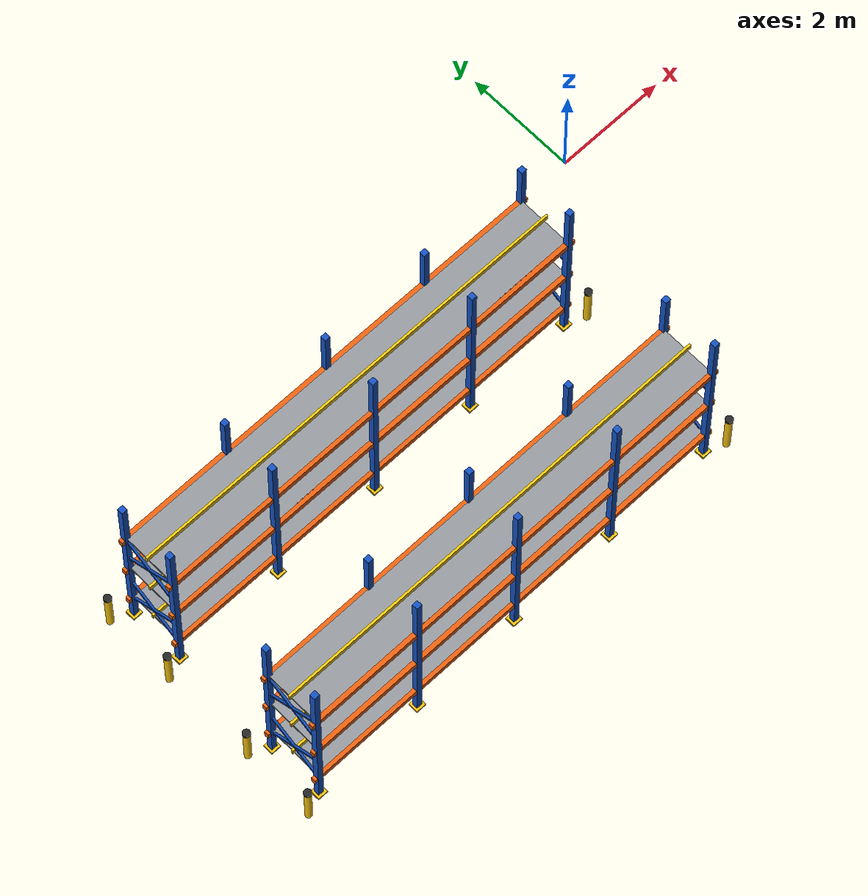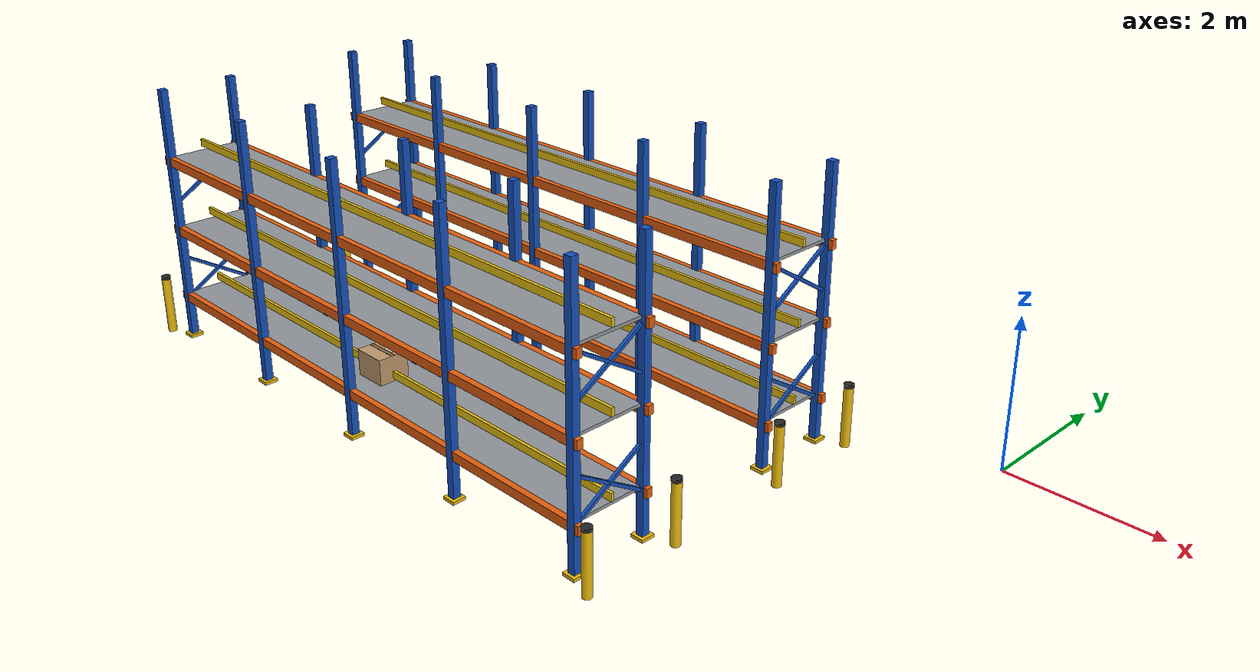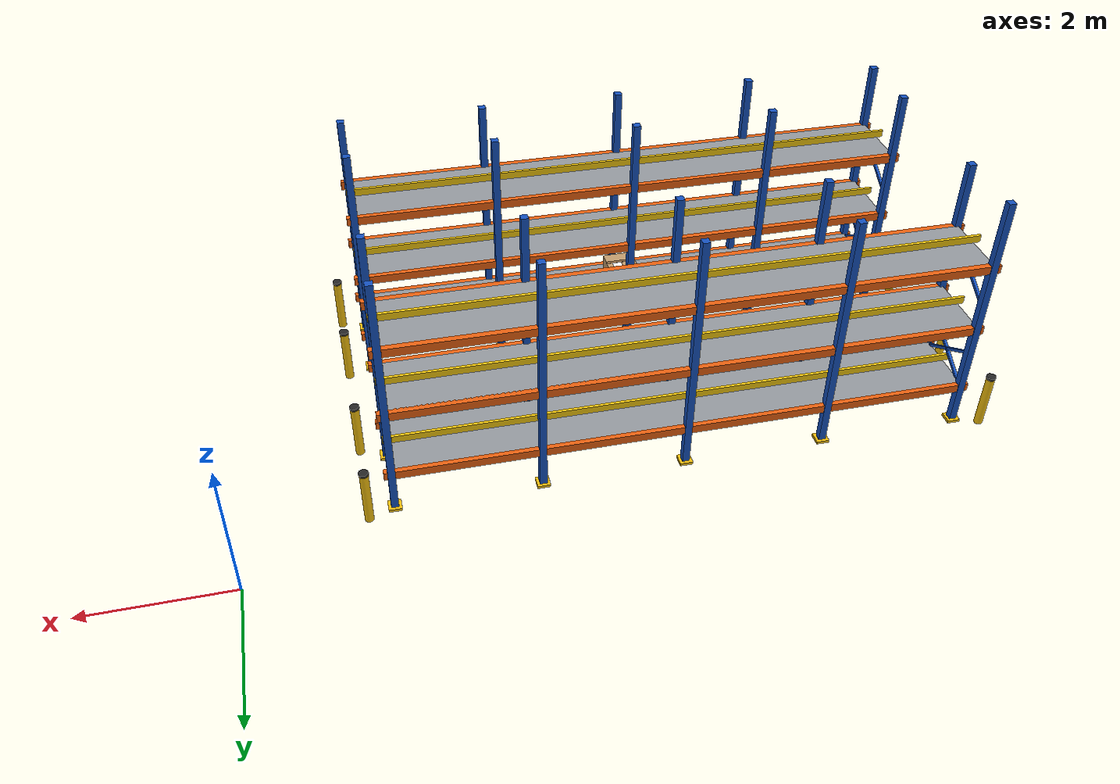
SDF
<sdf version="1.8">
 <world name="warehouse_3d">
  <model name="Rack_B">
   <static>true</static>
   <pose>-6.00 -4.50 0 0 0 0</pose>
   <link name="col_0_0">
    <pose>-4.0000 -0.5000 1.8000 0.0000 0.0000 0.0000</pose>
    <collision name="col_0_0_col"><geometry><box><size>0.1000 0.1000 3.6000</size></box></geometry></collision>
    <visual name="col_0_0_vis">
     <geometry><box><size>0.1000 0.1000 3.6000</size></box></geometry>
     <material>
      <ambient>0.052 0.208 0.488 1.00</ambient>
      <diffuse>0.080 0.320 0.750 1.00</diffuse>
      <specular>0.15 0.15 0.15 1.0</specular>
     </material>
    </visual>
   </link>
   <link name="foot_0_0">
    <pose>-4.0000 -0.5000 0.0200 0.0000 0.0000 0.0000</pose>
    <collision name="foot_0_0_col"><geometry><box><size>0.1800 0.1800 0.0400</size></box></geometry></collision>
    <visual name="foot_0_0_vis">
     <geometry><box><size>0.1800 0.1800 0.0400</size></box></geometry>
     <material>
      <ambient>0.617 0.488 0.033 1.00</ambient>
      <diffuse>0.950 0.750 0.050 1.00</diffuse>
      <specular>0.15 0.15 0.15 1.0</specular>
     </material>
    </visual>
   </link>
   <link name="col_0_1">
    <pose>-4.0000 0.5000 1.8000 0.0000 0.0000 0.0000</pose>
    <collision name="col_0_1_col"><geometry><box><size>0.1000 0.1000 3.6000</size></box></geometry></collision>
    <visual name="col_0_1_vis">
     <geometry><box><size>0.1000 0.1000 3.6000</size></box></geometry>
     <material>
      <ambient>0.052 0.208 0.488 1.00</ambient>
      <diffuse>0.080 0.320 0.750 1.00</diffuse>
      <specular>0.15 0.15 0.15 1.0</specular>
     </material>
    </visual>
   </link>
   <link name="foot_0_1">
    <pose>-4.0000 0.5000 0.0200 0.0000 0.0000 0.0000</pose>
    <collision name="foot_0_1_col"><geometry><box><size>0.1800 0.1800 0.0400</size></box></geometry></collision>
    <visual name="foot_0_1_vis">
     <geometry><box><size>0.1800 0.1800 0.0400</size></box></geometry>
     <material>
      <ambient>0.617 0.488 0.033 1.00</ambient>
      <diffuse>0.950 0.750 0.050 1.00</diffuse>
      <specular>0.15 0.15 0.15 1.0</specular>
     </material>
    </visual>
   </link>
   <link name="col_1_0">
    <pose>-2.0000 -0.5000 1.8000 0.0000 0.0000 0.0000</pose>
    <collision name="col_1_0_col"><geometry><box><size>0.1000 0.1000 3.6000</size></box></geometry></collision>
    <visual name="col_1_0_vis">
     <geometry><box><size>0.1000 0.1000 3.6000</size></box></geometry>
     <material>
      <ambient>0.052 0.208 0.488 1.00</ambient>
      <diffuse>0.080 0.320 0.750 1.00</diffuse>
      <specular>0.15 0.15 0.15 1.0</specular>
     </material>
    </visual>
   </link>
   <link name="foot_1_0">
    <pose>-2.0000 -0.5000 0.0200 0.0000 0.0000 0.0000</pose>
    <collision name="foot_1_0_col"><geometry><box><size>0.1800 0.1800 0.0400</size></box></geometry></collision>
    <visual name="foot_1_0_vis">
     <geometry><box><size>0.1800 0.1800 0.0400</size></box></geometry>
     <material>
      <ambient>0.617 0.488 0.033 1.00</ambient>
      <diffuse>0.950 0.750 0.050 1.00</diffuse>
      <specular>0.15 0.15 0.15 1.0</specular>
     </material>
    </visual>
   </link>
   <link name="col_1_1">
    <pose>-2.0000 0.5000 1.8000 0.0000 0.0000 0.0000</pose>
    <collision name="col_1_1_col"><geometry><box><size>0.1000 0.1000 3.6000</size></box></geometry></collision>
    <visual name="col_1_1_vis">
     <geometry><box><size>0.1000 0.1000 3.6000</size></box></geometry>
     <material>
      <ambient>0.052 0.208 0.488 1.00</ambient>
      <diffuse>0.080 0.320 0.750 1.00</diffuse>
      <specular>0.15 0.15 0.15 1.0</specular>
     </material>
    </visual>
   </link>
   <link name="foot_1_1">
    <pose>-2.0000 0.5000 0.0200 0.0000 0.0000 0.0000</pose>
    <collision name="foot_1_1_col"><geometry><box><size>0.1800 0.1800 0.0400</size></box></geometry></collision>
    <visual name="foot_1_1_vis">
     <geometry><box><size>0.1800 0.1800 0.0400</size></box></geometry>
     <material>
      <ambient>0.617 0.488 0.033 1.00</ambient>
      <diffuse>0.950 0.750 0.050 1.00</diffuse>
      <specular>0.15 0.15 0.15 1.0</specular>
     </material>
    </visual>
   </link>
   <link name="col_2_0">
    <pose>0.0000 -0.5000 1.8000 0.0000 0.0000 0.0000</pose>
    <collision name="col_2_0_col"><geometry><box><size>0.1000 0.1000 3.6000</size></box></geometry></collision>
    <visual name="col_2_0_vis">
     <geometry><box><size>0.1000 0.1000 3.6000</size></box></geometry>
     <material>
      <ambient>0.052 0.208 0.488 1.00</ambient>
      <diffuse>0.080 0.320 0.750 1.00</diffuse>
      <specular>0.15 0.15 0.15 1.0</specular>
     </material>
    </visual>
   </link>
   <link name="foot_2_0">
    <pose>0.0000 -0.5000 0.0200 0.0000 0.0000 0.0000</pose>
    <collision name="foot_2_0_col"><geometry><box><size>0.1800 0.1800 0.0400</size></box></geometry></collision>
    <visual name="foot_2_0_vis">
     <geometry><box><size>0.1800 0.1800 0.0400</size></box></geometry>
     <material>
      <ambient>0.617 0.488 0.033 1.00</ambient>
      <diffuse>0.950 0.750 0.050 1.00</diffuse>
      <specular>0.15 0.15 0.15 1.0</specular>
     </material>
    </visual>
   </link>
   <link name="col_2_1">
    <pose>0.0000 0.5000 1.8000 0.0000 0.0000 0.0000</pose>
    <collision name="col_2_1_col"><geometry><box><size>0.1000 0.1000 3.6000</size></box></geometry></collision>
    <visual name="col_2_1_vis">
     <geometry><box><size>0.1000 0.1000 3.6000</size></box></geometry>
     <material>
      <ambient>0.052 0.208 0.488 1.00</ambient>
      <diffuse>0.080 0.320 0.750 1.00</diffuse>
      <specular>0.15 0.15 0.15 1.0</specular>
     </material>
    </visual>
   </link>
   <link name="foot_2_1">
    <pose>0.0000 0.5000 0.0200 0.0000 0.0000 0.0000</pose>
    <collision name="foot_2_1_col"><geometry><box><size>0.1800 0.1800 0.0400</size></box></geometry></collision>
    <visual name="foot_2_1_vis">
     <geometry><box><size>0.1800 0.1800 0.0400</size></box></geometry>
     <material>
      <ambient>0.617 0.488 0.033 1.00</ambient>
      <diffuse>0.950 0.750 0.050 1.00</diffuse>
      <specular>0.15 0.15 0.15 1.0</specular>
     </material>
    </visual>
   </link>
   <link name="col_3_0">
    <pose>2.0000 -0.5000 1.8000 0.0000 0.0000 0.0000</pose>
    <collision name="col_3_0_col"><geometry><box><size>0.1000 0.1000 3.6000</size></box></geometry></collision>
    <visual name="col_3_0_vis">
     <geometry><box><size>0.1000 0.1000 3.6000</size></box></geometry>
     <material>
      <ambient>0.052 0.208 0.488 1.00</ambient>
      <diffuse>0.080 0.320 0.750 1.00</diffuse>
      <specular>0.15 0.15 0.15 1.0</specular>
     </material>
    </visual>
   </link>
   <link name="foot_3_0">
    <pose>2.0000 -0.5000 0.0200 0.0000 0.0000 0.0000</pose>
    <collision name="foot_3_0_col"><geometry><box><size>0.1800 0.1800 0.0400</size></box></geometry></collision>
    <visual name="foot_3_0_vis">
     <geometry><box><size>0.1800 0.1800 0.0400</size></box></geometry>
     <material>
      <ambient>0.617 0.488 0.033 1.00</ambient>
      <diffuse>0.950 0.750 0.050 1.00</diffuse>
      <specular>0.15 0.15 0.15 1.0</specular>
     </material>
    </visual>
   </link>
   <link name="col_3_1">
    <pose>2.0000 0.5000 1.8000 0.0000 0.0000 0.0000</pose>
    <collision name="col_3_1_col"><geometry><box><size>0.1000 0.1000 3.6000</size></box></geometry></collision>
    <visual name="col_3_1_vis">
     <geometry><box><size>0.1000 0.1000 3.6000</size></box></geometry>
     <material>
      <ambient>0.052 0.208 0.488 1.00</ambient>
      <diffuse>0.080 0.320 0.750 1.00</diffuse>
      <specular>0.15 0.15 0.15 1.0</specular>
     </material>
    </visual>
   </link>
   <link name="foot_3_1">
    <pose>2.0000 0.5000 0.0200 0.0000 0.0000 0.0000</pose>
    <collision name="foot_3_1_col"><geometry><box><size>0.1800 0.1800 0.0400</size></box></geometry></collision>
    <visual name="foot_3_1_vis">
     <geometry><box><size>0.1800 0.1800 0.0400</size></box></geometry>
     <material>
      <ambient>0.617 0.488 0.033 1.00</ambient>
      <diffuse>0.950 0.750 0.050 1.00</diffuse>
      <specular>0.15 0.15 0.15 1.0</specular>
     </material>
    </visual>
   </link>
   <link name="col_4_0">
    <pose>4.0000 -0.5000 1.8000 0.0000 0.0000 0.0000</pose>
    <collision name="col_4_0_col"><geometry><box><size>0.1000 0.1000 3.6000</size></box></geometry></collision>
    <visual name="col_4_0_vis">
     <geometry><box><size>0.1000 0.1000 3.6000</size></box></geometry>
     <material>
      <ambient>0.052 0.208 0.488 1.00</ambient>
      <diffuse>0.080 0.320 0.750 1.00</diffuse>
      <specular>0.15 0.15 0.15 1.0</specular>
     </material>
    </visual>
   </link>
   <link name="foot_4_0">
    <pose>4.0000 -0.5000 0.0200 0.0000 0.0000 0.0000</pose>
    <collision name="foot_4_0_col"><geometry><box><size>0.1800 0.1800 0.0400</size></box></geometry></collision>
    <visual name="foot_4_0_vis">
     <geometry><box><size>0.1800 0.1800 0.0400</size></box></geometry>
     <material>
      <ambient>0.617 0.488 0.033 1.00</ambient>
      <diffuse>0.950 0.750 0.050 1.00</diffuse>
      <specular>0.15 0.15 0.15 1.0</specular>
     </material>
    </visual>
   </link>
   <link name="col_4_1">
    <pose>4.0000 0.5000 1.8000 0.0000 0.0000 0.0000</pose>
    <collision name="col_4_1_col"><geometry><box><size>0.1000 0.1000 3.6000</size></box></geometry></collision>
    <visual name="col_4_1_vis">
     <geometry><box><size>0.1000 0.1000 3.6000</size></box></geometry>
     <material>
      <ambient>0.052 0.208 0.488 1.00</ambient>
      <diffuse>0.080 0.320 0.750 1.00</diffuse>
      <specular>0.15 0.15 0.15 1.0</specular>
     </material>
    </visual>
   </link>
   <link name="foot_4_1">
    <pose>4.0000 0.5000 0.0200 0.0000 0.0000 0.0000</pose>
    <collision name="foot_4_1_col"><geometry><box><size>0.1800 0.1800 0.0400</size></box></geometry></collision>
    <visual name="foot_4_1_vis">
     <geometry><box><size>0.1800 0.1800 0.0400</size></box></geometry>
     <material>
      <ambient>0.617 0.488 0.033 1.00</ambient>
      <diffuse>0.950 0.750 0.050 1.00</diffuse>
      <specular>0.15 0.15 0.15 1.0</specular>
     </material>
    </visual>
   </link>
   <link name="x_brace_low_1_w">
    <pose>-4.0000 0.0000 0.9000 0.5500 0.0000 0.0000</pose>
    <visual name="x_brace_low_1_w_vis">
     <geometry><box><size>0.0400 1.0500 0.0400</size></box></geometry>
     <material>
      <ambient>0.052 0.208 0.488 1.00</ambient>
      <diffuse>0.080 0.320 0.750 1.00</diffuse>
      <specular>0.15 0.15 0.15 1.0</specular>
     </material>
    </visual>
   </link>
   <link name="x_brace_low_2_w">
    <pose>-4.0000 0.0000 0.9000 -0.5500 0.0000 0.0000</pose>
    <visual name="x_brace_low_2_w_vis">
     <geometry><box><size>0.0400 1.0500 0.0400</size></box></geometry>
     <material>
      <ambient>0.052 0.208 0.488 1.00</ambient>
      <diffuse>0.080 0.320 0.750 1.00</diffuse>
      <specular>0.15 0.15 0.15 1.0</specular>
     </material>
    </visual>
   </link>
   <link name="x_brace_hi_1_w">
    <pose>-4.0000 0.0000 2.3000 0.5500 0.0000 0.0000</pose>
    <visual name="x_brace_hi_1_w_vis">
     <geometry><box><size>0.0400 1.0500 0.0400</size></box></geometry>
     <material>
      <ambient>0.052 0.208 0.488 1.00</ambient>
      <diffuse>0.080 0.320 0.750 1.00</diffuse>
      <specular>0.15 0.15 0.15 1.0</specular>
     </material>
    </visual>
   </link>
   <link name="x_brace_hi_2_w">
    <pose>-4.0000 0.0000 2.3000 -0.5500 0.0000 0.0000</pose>
    <visual name="x_brace_hi_2_w_vis">
     <geometry><box><size>0.0400 1.0500 0.0400</size></box></geometry>
     <material>
      <ambient>0.052 0.208 0.488 1.00</ambient>
      <diffuse>0.080 0.320 0.750 1.00</diffuse>
      <specular>0.15 0.15 0.15 1.0</specular>
     </material>
    </visual>
   </link>
   <link name="x_brace_low_1_e">
    <pose>4.0000 0.0000 0.9000 0.5500 0.0000 0.0000</pose>
    <visual name="x_brace_low_1_e_vis">
     <geometry><box><size>0.0400 1.0500 0.0400</size></box></geometry>
     <material>
      <ambient>0.052 0.208 0.488 1.00</ambient>
      <diffuse>0.080 0.320 0.750 1.00</diffuse>
      <specular>0.15 0.15 0.15 1.0</specular>
     </material>
    </visual>
   </link>
   <link name="x_brace_low_2_e">
    <pose>4.0000 0.0000 0.9000 -0.5500 0.0000 0.0000</pose>
    <visual name="x_brace_low_2_e_vis">
     <geometry><box><size>0.0400 1.0500 0.0400</size></box></geometry>
     <material>
      <ambient>0.052 0.208 0.488 1.00</ambient>
      <diffuse>0.080 0.320 0.750 1.00</diffuse>
      <specular>0.15 0.15 0.15 1.0</specular>
     </material>
    </visual>
   </link>
   <link name="x_brace_hi_1_e">
    <pose>4.0000 0.0000 2.3000 0.5500 0.0000 0.0000</pose>
    <visual name="x_brace_hi_1_e_vis">
     <geometry><box><size>0.0400 1.0500 0.0400</size></box></geometry>
     <material>
      <ambient>0.052 0.208 0.488 1.00</ambient>
      <diffuse>0.080 0.320 0.750 1.00</diffuse>
      <specular>0.15 0.15 0.15 1.0</specular>
     </material>
    </visual>
   </link>
   <link name="x_brace_hi_2_e">
    <pose>4.0000 0.0000 2.3000 -0.5500 0.0000 0.0000</pose>
    <visual name="x_brace_hi_2_e_vis">
     <geometry><box><size>0.0400 1.0500 0.0400</size></box></geometry>
     <material>
      <ambient>0.052 0.208 0.488 1.00</ambient>
      <diffuse>0.080 0.320 0.750 1.00</diffuse>
      <specular>0.15 0.15 0.15 1.0</specular>
     </material>
    </visual>
   </link>
   <link name="beam_front_0">
    <pose>0.0000 0.5000 0.6000 0.0000 0.0000 0.0000</pose>
    <collision name="beam_front_0_col">
     <geometry><box><size>8.2000 0.0800 0.1200</size></box></geometry>
    </collision>
    <visual name="beam_front_0_vis">
     <geometry><box><size>8.2000 0.0800 0.1200</size></box></geometry>
     <material>
      <ambient>0.598 0.247 0.039 1.00</ambient>
      <diffuse>0.920 0.380 0.060 1.00</diffuse>
      <specular>0.15 0.15 0.15 1.0</specular>
     </material>
    </visual>
   </link>
   <link name="beam_rear_0">
    <pose>0.0000 -0.5000 0.6000 0.0000 0.0000 0.0000</pose>
    <collision name="beam_rear_0_col">
     <geometry><box><size>8.2000 0.0800 0.1200</size></box></geometry>
    </collision>
    <visual name="beam_rear_0_vis">
     <geometry><box><size>8.2000 0.0800 0.1200</size></box></geometry>
     <material>
      <ambient>0.598 0.247 0.039 1.00</ambient>
      <diffuse>0.920 0.380 0.060 1.00</diffuse>
      <specular>0.15 0.15 0.15 1.0</specular>
     </material>
    </visual>
   </link>
   <link name="deck_0">
    <pose>0.0000 0.0000 0.6400 0.0000 0.0000 0.0000</pose>
    <collision name="deck_0_col"><geometry><box><size>8.0000 0.9400 0.0400</size></box></geometry></collision>
    <visual name="deck_0_vis">
     <geometry><box><size>8.0000 0.9400 0.0400</size></box></geometry>
     <material>
      <ambient>0.377 0.390 0.403 1.00</ambient>
      <diffuse>0.580 0.600 0.620 1.00</diffuse>
      <specular>0.15 0.15 0.15 1.0</specular>
     </material>
    </visual>
   </link>
   <link name="backstop_0">
    <pose>0.0000 0.0000 0.7500 0.0000 0.0000 0.0000</pose>
    <visual name="backstop_0_vis">
     <geometry><box><size>8.1000 0.0400 0.1000</size></box></geometry>
     <material>
      <ambient>0.617 0.507 0.033 1.00</ambient>
      <diffuse>0.950 0.780 0.050 1.00</diffuse>
      <specular>0.15 0.15 0.15 1.0</specular>
     </material>
    </visual>
   </link>
   <link name="beam_front_1">
    <pose>0.0000 0.5000 1.6000 0.0000 0.0000 0.0000</pose>
    <collision name="beam_front_1_col">
     <geometry><box><size>8.2000 0.0800 0.1200</size></box></geometry>
    </collision>
    <visual name="beam_front_1_vis">
     <geometry><box><size>8.2000 0.0800 0.1200</size></box></geometry>
     <material>
      <ambient>0.598 0.247 0.039 1.00</ambient>
      <diffuse>0.920 0.380 0.060 1.00</diffuse>
      <specular>0.15 0.15 0.15 1.0</specular>
     </material>
    </visual>
   </link>
   <link name="beam_rear_1">
    <pose>0.0000 -0.5000 1.6000 0.0000 0.0000 0.0000</pose>
    <collision name="beam_rear_1_col">
     <geometry><box><size>8.2000 0.0800 0.1200</size></box></geometry>
    </collision>
    <visual name="beam_rear_1_vis">
     <geometry><box><size>8.2000 0.0800 0.1200</size></box></geometry>
     <material>
      <ambient>0.598 0.247 0.039 1.00</ambient>
      <diffuse>0.920 0.380 0.060 1.00</diffuse>
      <specular>0.15 0.15 0.15 1.0</specular>
     </material>
    </visual>
   </link>
   <link name="deck_1">
    <pose>0.0000 0.0000 1.6400 0.0000 0.0000 0.0000</pose>
    <collision name="deck_1_col"><geometry><box><size>8.0000 0.9400 0.0400</size></box></geometry></collision>
    <visual name="deck_1_vis">
     <geometry><box><size>8.0000 0.9400 0.0400</size></box></geometry>
     <material>
      <ambient>0.377 0.390 0.403 1.00</ambient>
      <diffuse>0.580 0.600 0.620 1.00</diffuse>
      <specular>0.15 0.15 0.15 1.0</specular>
     </material>
    </visual>
   </link>
   <link name="backstop_1">
    <pose>0.0000 0.0000 1.7500 0.0000 0.0000 0.0000</pose>
    <visual name="backstop_1_vis">
     <geometry><box><size>8.1000 0.0400 0.1000</size></box></geometry>
     <material>
      <ambient>0.617 0.507 0.033 1.00</ambient>
      <diffuse>0.950 0.780 0.050 1.00</diffuse>
      <specular>0.15 0.15 0.15 1.0</specular>
     </material>
    </visual>
   </link>
   <link name="beam_front_2">
    <pose>0.0000 0.5000 2.6000 0.0000 0.0000 0.0000</pose>
    <collision name="beam_front_2_col">
     <geometry><box><size>8.2000 0.0800 0.1200</size></box></geometry>
    </collision>
    <visual name="beam_front_2_vis">
     <geometry><box><size>8.2000 0.0800 0.1200</size></box></geometry>
     <material>
      <ambient>0.598 0.247 0.039 1.00</ambient>
      <diffuse>0.920 0.380 0.060 1.00</diffuse>
      <specular>0.15 0.15 0.15 1.0</specular>
     </material>
    </visual>
   </link>
   <link name="beam_rear_2">
    <pose>0.0000 -0.5000 2.6000 0.0000 0.0000 0.0000</pose>
    <collision name="beam_rear_2_col">
     <geometry><box><size>8.2000 0.0800 0.1200</size></box></geometry>
    </collision>
    <visual name="beam_rear_2_vis">
     <geometry><box><size>8.2000 0.0800 0.1200</size></box></geometry>
     <material>
      <ambient>0.598 0.247 0.039 1.00</ambient>
      <diffuse>0.920 0.380 0.060 1.00</diffuse>
      <specular>0.15 0.15 0.15 1.0</specular>
     </material>
    </visual>
   </link>
   <link name="deck_2">
    <pose>0.0000 0.0000 2.6400 0.0000 0.0000 0.0000</pose>
    <collision name="deck_2_col"><geometry><box><size>8.0000 0.9400 0.0400</size></box></geometry></collision>
    <visual name="deck_2_vis">
     <geometry><box><size>8.0000 0.9400 0.0400</size></box></geometry>
     <material>
      <ambient>0.377 0.390 0.403 1.00</ambient>
      <diffuse>0.580 0.600 0.620 1.00</diffuse>
      <specular>0.15 0.15 0.15 1.0</specular>
     </material>
    </visual>
   </link>
   <link name="backstop_2">
    <pose>0.0000 0.0000 2.7500 0.0000 0.0000 0.0000</pose>
    <visual name="backstop_2_vis">
     <geometry><box><size>8.1000 0.0400 0.1000</size></box></geometry>
     <material>
      <ambient>0.617 0.507 0.033 1.00</ambient>
      <diffuse>0.950 0.780 0.050 1.00</diffuse>
      <specular>0.15 0.15 0.15 1.0</specular>
     </material>
    </visual>
   </link>
   <link name="bollard_0">
    <pose>-4.3500 -0.6500 0.4000 0.0000 0.0000 0.0000</pose>
    <collision name="bollard_0_col">
     <geometry><cylinder><radius>0.0600</radius><length>0.8000</length></cylinder></geometry>
    </collision>
    <visual name="bollard_0_vis">
     <geometry><cylinder><radius>0.0600</radius><length>0.8000</length></cylinder></geometry>
     <material>
      <ambient>0.617 0.488 0.033 1.00</ambient>
      <diffuse>0.950 0.750 0.050 1.00</diffuse>
      <specular>0.2 0.2 0.2 1.0</specular>
     </material>
    </visual>
   </link>
   <link name="bollard_cap_0">
    <pose>-4.3500 -0.6500 0.8200 0.0000 0.0000 0.0000</pose>
    <collision name="bollard_cap_0_col">
     <geometry><cylinder><radius>0.0650</radius><length>0.0400</length></cylinder></geometry>
    </collision>
    <visual name="bollard_cap_0_vis">
     <geometry><cylinder><radius>0.0650</radius><length>0.0400</length></cylinder></geometry>
     <material>
      <ambient>0.098 0.098 0.098 1.00</ambient>
      <diffuse>0.150 0.150 0.150 1.00</diffuse>
      <specular>0.2 0.2 0.2 1.0</specular>
     </material>
    </visual>
   </link>
   <link name="bollard_1">
    <pose>-4.3500 0.6500 0.4000 0.0000 0.0000 0.0000</pose>
    <collision name="bollard_1_col">
     <geometry><cylinder><radius>0.0600</radius><length>0.8000</length></cylinder></geometry>
    </collision>
    <visual name="bollard_1_vis">
     <geometry><cylinder><radius>0.0600</radius><length>0.8000</length></cylinder></geometry>
     <material>
      <ambient>0.617 0.488 0.033 1.00</ambient>
      <diffuse>0.950 0.750 0.050 1.00</diffuse>
      <specular>0.2 0.2 0.2 1.0</specular>
     </material>
    </visual>
   </link>
   <link name="bollard_cap_1">
    <pose>-4.3500 0.6500 0.8200 0.0000 0.0000 0.0000</pose>
    <collision name="bollard_cap_1_col">
     <geometry><cylinder><radius>0.0650</radius><length>0.0400</length></cylinder></geometry>
    </collision>
    <visual name="bollard_cap_1_vis">
     <geometry><cylinder><radius>0.0650</radius><length>0.0400</length></cylinder></geometry>
     <material>
      <ambient>0.098 0.098 0.098 1.00</ambient>
      <diffuse>0.150 0.150 0.150 1.00</diffuse>
      <specular>0.2 0.2 0.2 1.0</specular>
     </material>
    </visual>
   </link>
   <link name="bollard_2">
    <pose>4.3500 -0.6500 0.4000 0.0000 0.0000 0.0000</pose>
    <collision name="bollard_2_col">
     <geometry><cylinder><radius>0.0600</radius><length>0.8000</length></cylinder></geometry>
    </collision>
    <visual name="bollard_2_vis">
     <geometry><cylinder><radius>0.0600</radius><length>0.8000</length></cylinder></geometry>
     <material>
      <ambient>0.617 0.488 0.033 1.00</ambient>
      <diffuse>0.950 0.750 0.050 1.00</diffuse>
      <specular>0.2 0.2 0.2 1.0</specular>
     </material>
    </visual>
   </link>
   <link name="bollard_cap_2">
    <pose>4.3500 -0.6500 0.8200 0.0000 0.0000 0.0000</pose>
    <collision name="bollard_cap_2_col">
     <geometry><cylinder><radius>0.0650</radius><length>0.0400</length></cylinder></geometry>
    </collision>
    <visual name="bollard_cap_2_vis">
     <geometry><cylinder><radius>0.0650</radius><length>0.0400</length></cylinder></geometry>
     <material>
      <ambient>0.098 0.098 0.098 1.00</ambient>
      <diffuse>0.150 0.150 0.150 1.00</diffuse>
      <specular>0.2 0.2 0.2 1.0</specular>
     </material>
    </visual>
   </link>
   <link name="bollard_3">
    <pose>4.3500 0.6500 0.4000 0.0000 0.0000 0.0000</pose>
    <collision name="bollard_3_col">
     <geometry><cylinder><radius>0.0600</radius><length>0.8000</length></cylinder></geometry>
    </collision>
    <visual name="bollard_3_vis">
     <geometry><cylinder><radius>0.0600</radius><length>0.8000</length></cylinder></geometry>
     <material>
      <ambient>0.617 0.488 0.033 1.00</ambient>
      <diffuse>0.950 0.750 0.050 1.00</diffuse>
      <specular>0.2 0.2 0.2 1.0</specular>
     </material>
    </visual>
   </link>
   <link name="bollard_cap_3">
    <pose>4.3500 0.6500 0.8200 0.0000 0.0000 0.0000</pose>
    <collision name="bollard_cap_3_col">
     <geometry><cylinder><radius>0.0650</radius><length>0.0400</length></cylinder></geometry>
    </collision>
    <visual name="bollard_cap_3_vis">
     <geometry><cylinder><radius>0.0650</radius><length>0.0400</length></cylinder></geometry>
     <material>
      <ambient>0.098 0.098 0.098 1.00</ambient>
      <diffuse>0.150 0.150 0.150 1.00</diffuse>
      <specular>0.2 0.2 0.2 1.0</specular>
     </material>
    </visual>
   </link>
  </model>
  <model name="Rack_C">
   <static>true</static>
   <pose>-6.00 -1.50 0 0 0 0</pose>
   <link name="col_0_0">
    <pose>-4.0000 -0.5000 1.8000 0.0000 0.0000 0.0000</pose>
    <collision name="col_0_0_col"><geometry><box><size>0.1000 0.1000 3.6000</size></box></geometry></collision>
    <visual name="col_0_0_vis">
     <geometry><box><size>0.1000 0.1000 3.6000</size></box></geometry>
     <material>
      <ambient>0.052 0.208 0.488 1.00</ambient>
      <diffuse>0.080 0.320 0.750 1.00</diffuse>
      <specular>0.15 0.15 0.15 1.0</specular>
     </material>
    </visual>
   </link>
   <link name="foot_0_0">
    <pose>-4.0000 -0.5000 0.0200 0.0000 0.0000 0.0000</pose>
    <collision name="foot_0_0_col"><geometry><box><size>0.1800 0.1800 0.0400</size></box></geometry></collision>
    <visual name="foot_0_0_vis">
     <geometry><box><size>0.1800 0.1800 0.0400</size></box></geometry>
     <material>
      <ambient>0.617 0.488 0.033 1.00</ambient>
      <diffuse>0.950 0.750 0.050 1.00</diffuse>
      <specular>0.15 0.15 0.15 1.0</specular>
     </material>
    </visual>
   </link>
   <link name="col_0_1">
    <pose>-4.0000 0.5000 1.8000 0.0000 0.0000 0.0000</pose>
    <collision name="col_0_1_col"><geometry><box><size>0.1000 0.1000 3.6000</size></box></geometry></collision>
    <visual name="col_0_1_vis">
     <geometry><box><size>0.1000 0.1000 3.6000</size></box></geometry>
     <material>
      <ambient>0.052 0.208 0.488 1.00</ambient>
      <diffuse>0.080 0.320 0.750 1.00</diffuse>
      <specular>0.15 0.15 0.15 1.0</specular>
     </material>
    </visual>
   </link>
   <link name="foot_0_1">
    <pose>-4.0000 0.5000 0.0200 0.0000 0.0000 0.0000</pose>
    <collision name="foot_0_1_col"><geometry><box><size>0.1800 0.1800 0.0400</size></box></geometry></collision>
    <visual name="foot_0_1_vis">
     <geometry><box><size>0.1800 0.1800 0.0400</size></box></geometry>
     <material>
      <ambient>0.617 0.488 0.033 1.00</ambient>
      <diffuse>0.950 0.750 0.050 1.00</diffuse>
      <specular>0.15 0.15 0.15 1.0</specular>
     </material>
    </visual>
   </link>
   <link name="col_1_0">
    <pose>-2.0000 -0.5000 1.8000 0.0000 0.0000 0.0000</pose>
    <collision name="col_1_0_col"><geometry><box><size>0.1000 0.1000 3.6000</size></box></geometry></collision>
    <visual name="col_1_0_vis">
     <geometry><box><size>0.1000 0.1000 3.6000</size></box></geometry>
     <material>
      <ambient>0.052 0.208 0.488 1.00</ambient>
      <diffuse>0.080 0.320 0.750 1.00</diffuse>
      <specular>0.15 0.15 0.15 1.0</specular>
     </material>
    </visual>
   </link>
   <link name="foot_1_0">
    <pose>-2.0000 -0.5000 0.0200 0.0000 0.0000 0.0000</pose>
    <collision name="foot_1_0_col"><geometry><box><size>0.1800 0.1800 0.0400</size></box></geometry></collision>
    <visual name="foot_1_0_vis">
     <geometry><box><size>0.1800 0.1800 0.0400</size></box></geometry>
     <material>
      <ambient>0.617 0.488 0.033 1.00</ambient>
      <diffuse>0.950 0.750 0.050 1.00</diffuse>
      <specular>0.15 0.15 0.15 1.0</specular>
     </material>
    </visual>
   </link>
   <link name="col_1_1">
    <pose>-2.0000 0.5000 1.8000 0.0000 0.0000 0.0000</pose>
    <collision name="col_1_1_col"><geometry><box><size>0.1000 0.1000 3.6000</size></box></geometry></collision>
    <visual name="col_1_1_vis">
     <geometry><box><size>0.1000 0.1000 3.6000</size></box></geometry>
     <material>
      <ambient>0.052 0.208 0.488 1.00</ambient>
      <diffuse>0.080 0.320 0.750 1.00</diffuse>
      <specular>0.15 0.15 0.15 1.0</specular>
     </material>
    </visual>
   </link>
   <link name="foot_1_1">
    <pose>-2.0000 0.5000 0.0200 0.0000 0.0000 0.0000</pose>
    <collision name="foot_1_1_col"><geometry><box><size>0.1800 0.1800 0.0400</size></box></geometry></collision>
    <visual name="foot_1_1_vis">
     <geometry><box><size>0.1800 0.1800 0.0400</size></box></geometry>
     <material>
      <ambient>0.617 0.488 0.033 1.00</ambient>
      <diffuse>0.950 0.750 0.050 1.00</diffuse>
      <specular>0.15 0.15 0.15 1.0</specular>
     </material>
    </visual>
   </link>
   <link name="col_2_0">
    <pose>0.0000 -0.5000 1.8000 0.0000 0.0000 0.0000</pose>
    <collision name="col_2_0_col"><geometry><box><size>0.1000 0.1000 3.6000</size></box></geometry></collision>
    <visual name="col_2_0_vis">
     <geometry><box><size>0.1000 0.1000 3.6000</size></box></geometry>
     <material>
      <ambient>0.052 0.208 0.488 1.00</ambient>
      <diffuse>0.080 0.320 0.750 1.00</diffuse>
      <specular>0.15 0.15 0.15 1.0</specular>
     </material>
    </visual>
   </link>
   <link name="foot_2_0">
    <pose>0.0000 -0.5000 0.0200 0.0000 0.0000 0.0000</pose>
    <collision name="foot_2_0_col"><geometry><box><size>0.1800 0.1800 0.0400</size></box></geometry></collision>
    <visual name="foot_2_0_vis">
     <geometry><box><size>0.1800 0.1800 0.0400</size></box></geometry>
     <material>
      <ambient>0.617 0.488 0.033 1.00</ambient>
      <diffuse>0.950 0.750 0.050 1.00</diffuse>
      <specular>0.15 0.15 0.15 1.0</specular>
     </material>
    </visual>
   </link>
   <link name="col_2_1">
    <pose>0.0000 0.5000 1.8000 0.0000 0.0000 0.0000</pose>
    <collision name="col_2_1_col"><geometry><box><size>0.1000 0.1000 3.6000</size></box></geometry></collision>
    <visual name="col_2_1_vis">
     <geometry><box><size>0.1000 0.1000 3.6000</size></box></geometry>
     <material>
      <ambient>0.052 0.208 0.488 1.00</ambient>
      <diffuse>0.080 0.320 0.750 1.00</diffuse>
      <specular>0.15 0.15 0.15 1.0</specular>
     </material>
    </visual>
   </link>
   <link name="foot_2_1">
    <pose>0.0000 0.5000 0.0200 0.0000 0.0000 0.0000</pose>
    <collision name="foot_2_1_col"><geometry><box><size>0.1800 0.1800 0.0400</size></box></geometry></collision>
    <visual name="foot_2_1_vis">
     <geometry><box><size>0.1800 0.1800 0.0400</size></box></geometry>
     <material>
      <ambient>0.617 0.488 0.033 1.00</ambient>
      <diffuse>0.950 0.750 0.050 1.00</diffuse>
      <specular>0.15 0.15 0.15 1.0</specular>
     </material>
    </visual>
   </link>
   <link name="col_3_0">
    <pose>2.0000 -0.5000 1.8000 0.0000 0.0000 0.0000</pose>
    <collision name="col_3_0_col"><geometry><box><size>0.1000 0.1000 3.6000</size></box></geometry></collision>
    <visual name="col_3_0_vis">
     <geometry><box><size>0.1000 0.1000 3.6000</size></box></geometry>
     <material>
      <ambient>0.052 0.208 0.488 1.00</ambient>
      <diffuse>0.080 0.320 0.750 1.00</diffuse>
      <specular>0.15 0.15 0.15 1.0</specular>
     </material>
    </visual>
   </link>
   <link name="foot_3_0">
    <pose>2.0000 -0.5000 0.0200 0.0000 0.0000 0.0000</pose>
    <collision name="foot_3_0_col"><geometry><box><size>0.1800 0.1800 0.0400</size></box></geometry></collision>
    <visual name="foot_3_0_vis">
     <geometry><box><size>0.1800 0.1800 0.0400</size></box></geometry>
     <material>
      <ambient>0.617 0.488 0.033 1.00</ambient>
      <diffuse>0.950 0.750 0.050 1.00</diffuse>
      <specular>0.15 0.15 0.15 1.0</specular>
     </material>
    </visual>
   </link>
   <link name="col_3_1">
    <pose>2.0000 0.5000 1.8000 0.0000 0.0000 0.0000</pose>
    <collision name="col_3_1_col"><geometry><box><size>0.1000 0.1000 3.6000</size></box></geometry></collision>
    <visual name="col_3_1_vis">
     <geometry><box><size>0.1000 0.1000 3.6000</size></box></geometry>
     <material>
      <ambient>0.052 0.208 0.488 1.00</ambient>
      <diffuse>0.080 0.320 0.750 1.00</diffuse>
      <specular>0.15 0.15 0.15 1.0</specular>
     </material>
    </visual>
   </link>
   <link name="foot_3_1">
    <pose>2.0000 0.5000 0.0200 0.0000 0.0000 0.0000</pose>
    <collision name="foot_3_1_col"><geometry><box><size>0.1800 0.1800 0.0400</size></box></geometry></collision>
    <visual name="foot_3_1_vis">
     <geometry><box><size>0.1800 0.1800 0.0400</size></box></geometry>
     <material>
      <ambient>0.617 0.488 0.033 1.00</ambient>
      <diffuse>0.950 0.750 0.050 1.00</diffuse>
      <specular>0.15 0.15 0.15 1.0</specular>
     </material>
    </visual>
   </link>
   <link name="col_4_0">
    <pose>4.0000 -0.5000 1.8000 0.0000 0.0000 0.0000</pose>
    <collision name="col_4_0_col"><geometry><box><size>0.1000 0.1000 3.6000</size></box></geometry></collision>
    <visual name="col_4_0_vis">
     <geometry><box><size>0.1000 0.1000 3.6000</size></box></geometry>
     <material>
      <ambient>0.052 0.208 0.488 1.00</ambient>
      <diffuse>0.080 0.320 0.750 1.00</diffuse>
      <specular>0.15 0.15 0.15 1.0</specular>
     </material>
    </visual>
   </link>
   <link name="foot_4_0">
    <pose>4.0000 -0.5000 0.0200 0.0000 0.0000 0.0000</pose>
    <collision name="foot_4_0_col"><geometry><box><size>0.1800 0.1800 0.0400</size></box></geometry></collision>
    <visual name="foot_4_0_vis">
     <geometry><box><size>0.1800 0.1800 0.0400</size></box></geometry>
     <material>
      <ambient>0.617 0.488 0.033 1.00</ambient>
      <diffuse>0.950 0.750 0.050 1.00</diffuse>
      <specular>0.15 0.15 0.15 1.0</specular>
     </material>
    </visual>
   </link>
   <link name="col_4_1">
    <pose>4.0000 0.5000 1.8000 0.0000 0.0000 0.0000</pose>
    <collision name="col_4_1_col"><geometry><box><size>0.1000 0.1000 3.6000</size></box></geometry></collision>
    <visual name="col_4_1_vis">
     <geometry><box><size>0.1000 0.1000 3.6000</size></box></geometry>
     <material>
      <ambient>0.052 0.208 0.488 1.00</ambient>
      <diffuse>0.080 0.320 0.750 1.00</diffuse>
      <specular>0.15 0.15 0.15 1.0</specular>
     </material>
    </visual>
   </link>
   <link name="foot_4_1">
    <pose>4.0000 0.5000 0.0200 0.0000 0.0000 0.0000</pose>
    <collision name="foot_4_1_col"><geometry><box><size>0.1800 0.1800 0.0400</size></box></geometry></collision>
    <visual name="foot_4_1_vis">
     <geometry><box><size>0.1800 0.1800 0.0400</size></box></geometry>
     <material>
      <ambient>0.617 0.488 0.033 1.00</ambient>
      <diffuse>0.950 0.750 0.050 1.00</diffuse>
      <specular>0.15 0.15 0.15 1.0</specular>
     </material>
    </visual>
   </link>
   <link name="x_brace_low_1_w">
    <pose>-4.0000 0.0000 0.9000 0.5500 0.0000 0.0000</pose>
    <visual name="x_brace_low_1_w_vis">
     <geometry><box><size>0.0400 1.0500 0.0400</size></box></geometry>
     <material>
      <ambient>0.052 0.208 0.488 1.00</ambient>
      <diffuse>0.080 0.320 0.750 1.00</diffuse>
      <specular>0.15 0.15 0.15 1.0</specular>
     </material>
    </visual>
   </link>
   <link name="x_brace_low_2_w">
    <pose>-4.0000 0.0000 0.9000 -0.5500 0.0000 0.0000</pose>
    <visual name="x_brace_low_2_w_vis">
     <geometry><box><size>0.0400 1.0500 0.0400</size></box></geometry>
     <material>
      <ambient>0.052 0.208 0.488 1.00</ambient>
      <diffuse>0.080 0.320 0.750 1.00</diffuse>
      <specular>0.15 0.15 0.15 1.0</specular>
     </material>
    </visual>
   </link>
   <link name="x_brace_hi_1_w">
    <pose>-4.0000 0.0000 2.3000 0.5500 0.0000 0.0000</pose>
    <visual name="x_brace_hi_1_w_vis">
     <geometry><box><size>0.0400 1.0500 0.0400</size></box></geometry>
     <material>
      <ambient>0.052 0.208 0.488 1.00</ambient>
      <diffuse>0.080 0.320 0.750 1.00</diffuse>
      <specular>0.15 0.15 0.15 1.0</specular>
     </material>
    </visual>
   </link>
   <link name="x_brace_hi_2_w">
    <pose>-4.0000 0.0000 2.3000 -0.5500 0.0000 0.0000</pose>
    <visual name="x_brace_hi_2_w_vis">
     <geometry><box><size>0.0400 1.0500 0.0400</size></box></geometry>
     <material>
      <ambient>0.052 0.208 0.488 1.00</ambient>
      <diffuse>0.080 0.320 0.750 1.00</diffuse>
      <specular>0.15 0.15 0.15 1.0</specular>
     </material>
    </visual>
   </link>
   <link name="x_brace_low_1_e">
    <pose>4.0000 0.0000 0.9000 0.5500 0.0000 0.0000</pose>
    <visual name="x_brace_low_1_e_vis">
     <geometry><box><size>0.0400 1.0500 0.0400</size></box></geometry>
     <material>
      <ambient>0.052 0.208 0.488 1.00</ambient>
      <diffuse>0.080 0.320 0.750 1.00</diffuse>
      <specular>0.15 0.15 0.15 1.0</specular>
     </material>
    </visual>
   </link>
   <link name="x_brace_low_2_e">
    <pose>4.0000 0.0000 0.9000 -0.5500 0.0000 0.0000</pose>
    <visual name="x_brace_low_2_e_vis">
     <geometry><box><size>0.0400 1.0500 0.0400</size></box></geometry>
     <material>
      <ambient>0.052 0.208 0.488 1.00</ambient>
      <diffuse>0.080 0.320 0.750 1.00</diffuse>
      <specular>0.15 0.15 0.15 1.0</specular>
     </material>
    </visual>
   </link>
   <link name="x_brace_hi_1_e">
    <pose>4.0000 0.0000 2.3000 0.5500 0.0000 0.0000</pose>
    <visual name="x_brace_hi_1_e_vis">
     <geometry><box><size>0.0400 1.0500 0.0400</size></box></geometry>
     <material>
      <ambient>0.052 0.208 0.488 1.00</ambient>
      <diffuse>0.080 0.320 0.750 1.00</diffuse>
      <specular>0.15 0.15 0.15 1.0</specular>
     </material>
    </visual>
   </link>
   <link name="x_brace_hi_2_e">
    <pose>4.0000 0.0000 2.3000 -0.5500 0.0000 0.0000</pose>
    <visual name="x_brace_hi_2_e_vis">
     <geometry><box><size>0.0400 1.0500 0.0400</size></box></geometry>
     <material>
      <ambient>0.052 0.208 0.488 1.00</ambient>
      <diffuse>0.080 0.320 0.750 1.00</diffuse>
      <specular>0.15 0.15 0.15 1.0</specular>
     </material>
    </visual>
   </link>
   <link name="beam_front_0">
    <pose>0.0000 0.5000 0.6000 0.0000 0.0000 0.0000</pose>
    <collision name="beam_front_0_col">
     <geometry><box><size>8.2000 0.0800 0.1200</size></box></geometry>
    </collision>
    <visual name="beam_front_0_vis">
     <geometry><box><size>8.2000 0.0800 0.1200</size></box></geometry>
     <material>
      <ambient>0.598 0.247 0.039 1.00</ambient>
      <diffuse>0.920 0.380 0.060 1.00</diffuse>
      <specular>0.15 0.15 0.15 1.0</specular>
     </material>
    </visual>
   </link>
   <link name="beam_rear_0">
    <pose>0.0000 -0.5000 0.6000 0.0000 0.0000 0.0000</pose>
    <collision name="beam_rear_0_col">
     <geometry><box><size>8.2000 0.0800 0.1200</size></box></geometry>
    </collision>
    <visual name="beam_rear_0_vis">
     <geometry><box><size>8.2000 0.0800 0.1200</size></box></geometry>
     <material>
      <ambient>0.598 0.247 0.039 1.00</ambient>
      <diffuse>0.920 0.380 0.060 1.00</diffuse>
      <specular>0.15 0.15 0.15 1.0</specular>
     </material>
    </visual>
   </link>
   <link name="deck_0">
    <pose>0.0000 0.0000 0.6400 0.0000 0.0000 0.0000</pose>
    <collision name="deck_0_col"><geometry><box><size>8.0000 0.9400 0.0400</size></box></geometry></collision>
    <visual name="deck_0_vis">
     <geometry><box><size>8.0000 0.9400 0.0400</size></box></geometry>
     <material>
      <ambient>0.377 0.390 0.403 1.00</ambient>
      <diffuse>0.580 0.600 0.620 1.00</diffuse>
      <specular>0.15 0.15 0.15 1.0</specular>
     </material>
    </visual>
   </link>
   <link name="backstop_0">
    <pose>0.0000 0.0000 0.7500 0.0000 0.0000 0.0000</pose>
    <visual name="backstop_0_vis">
     <geometry><box><size>8.1000 0.0400 0.1000</size></box></geometry>
     <material>
      <ambient>0.617 0.507 0.033 1.00</ambient>
      <diffuse>0.950 0.780 0.050 1.00</diffuse>
      <specular>0.15 0.15 0.15 1.0</specular>
     </material>
    </visual>
   </link>
   <link name="beam_front_1">
    <pose>0.0000 0.5000 1.6000 0.0000 0.0000 0.0000</pose>
    <collision name="beam_front_1_col">
     <geometry><box><size>8.2000 0.0800 0.1200</size></box></geometry>
    </collision>
    <visual name="beam_front_1_vis">
     <geometry><box><size>8.2000 0.0800 0.1200</size></box></geometry>
     <material>
      <ambient>0.598 0.247 0.039 1.00</ambient>
      <diffuse>0.920 0.380 0.060 1.00</diffuse>
      <specular>0.15 0.15 0.15 1.0</specular>
     </material>
    </visual>
   </link>
   <link name="beam_rear_1">
    <pose>0.0000 -0.5000 1.6000 0.0000 0.0000 0.0000</pose>
    <collision name="beam_rear_1_col">
     <geometry><box><size>8.2000 0.0800 0.1200</size></box></geometry>
    </collision>
    <visual name="beam_rear_1_vis">
     <geometry><box><size>8.2000 0.0800 0.1200</size></box></geometry>
     <material>
      <ambient>0.598 0.247 0.039 1.00</ambient>
      <diffuse>0.920 0.380 0.060 1.00</diffuse>
      <specular>0.15 0.15 0.15 1.0</specular>
     </material>
    </visual>
   </link>
   <link name="deck_1">
    <pose>0.0000 0.0000 1.6400 0.0000 0.0000 0.0000</pose>
    <collision name="deck_1_col"><geometry><box><size>8.0000 0.9400 0.0400</size></box></geometry></collision>
    <visual name="deck_1_vis">
     <geometry><box><size>8.0000 0.9400 0.0400</size></box></geometry>
     <material>
      <ambient>0.377 0.390 0.403 1.00</ambient>
      <diffuse>0.580 0.600 0.620 1.00</diffuse>
      <specular>0.15 0.15 0.15 1.0</specular>
     </material>
    </visual>
   </link>
   <link name="backstop_1">
    <pose>0.0000 0.0000 1.7500 0.0000 0.0000 0.0000</pose>
    <visual name="backstop_1_vis">
     <geometry><box><size>8.1000 0.0400 0.1000</size></box></geometry>
     <material>
      <ambient>0.617 0.507 0.033 1.00</ambient>
      <diffuse>0.950 0.780 0.050 1.00</diffuse>
      <specular>0.15 0.15 0.15 1.0</specular>
     </material>
    </visual>
   </link>
   <link name="beam_front_2">
    <pose>0.0000 0.5000 2.6000 0.0000 0.0000 0.0000</pose>
    <collision name="beam_front_2_col">
     <geometry><box><size>8.2000 0.0800 0.1200</size></box></geometry>
    </collision>
    <visual name="beam_front_2_vis">
     <geometry><box><size>8.2000 0.0800 0.1200</size></box></geometry>
     <material>
      <ambient>0.598 0.247 0.039 1.00</ambient>
      <diffuse>0.920 0.380 0.060 1.00</diffuse>
      <specular>0.15 0.15 0.15 1.0</specular>
     </material>
    </visual>
   </link>
   <link name="beam_rear_2">
    <pose>0.0000 -0.5000 2.6000 0.0000 0.0000 0.0000</pose>
    <collision name="beam_rear_2_col">
     <geometry><box><size>8.2000 0.0800 0.1200</size></box></geometry>
    </collision>
    <visual name="beam_rear_2_vis">
     <geometry><box><size>8.2000 0.0800 0.1200</size></box></geometry>
     <material>
      <ambient>0.598 0.247 0.039 1.00</ambient>
      <diffuse>0.920 0.380 0.060 1.00</diffuse>
      <specular>0.15 0.15 0.15 1.0</specular>
     </material>
    </visual>
   </link>
   <link name="deck_2">
    <pose>0.0000 0.0000 2.6400 0.0000 0.0000 0.0000</pose>
    <collision name="deck_2_col"><geometry><box><size>8.0000 0.9400 0.0400</size></box></geometry></collision>
    <visual name="deck_2_vis">
     <geometry><box><size>8.0000 0.9400 0.0400</size></box></geometry>
     <material>
      <ambient>0.377 0.390 0.403 1.00</ambient>
      <diffuse>0.580 0.600 0.620 1.00</diffuse>
      <specular>0.15 0.15 0.15 1.0</specular>
     </material>
    </visual>
   </link>
   <link name="backstop_2">
    <pose>0.0000 0.0000 2.7500 0.0000 0.0000 0.0000</pose>
    <visual name="backstop_2_vis">
     <geometry><box><size>8.1000 0.0400 0.1000</size></box></geometry>
     <material>
      <ambient>0.617 0.507 0.033 1.00</ambient>
      <diffuse>0.950 0.780 0.050 1.00</diffuse>
      <specular>0.15 0.15 0.15 1.0</specular>
     </material>
    </visual>
   </link>
   <link name="bollard_0">
    <pose>-4.3500 -0.6500 0.4000 0.0000 0.0000 0.0000</pose>
    <collision name="bollard_0_col">
     <geometry><cylinder><radius>0.0600</radius><length>0.8000</length></cylinder></geometry>
    </collision>
    <visual name="bollard_0_vis">
     <geometry><cylinder><radius>0.0600</radius><length>0.8000</length></cylinder></geometry>
     <material>
      <ambient>0.617 0.488 0.033 1.00</ambient>
      <diffuse>0.950 0.750 0.050 1.00</diffuse>
      <specular>0.2 0.2 0.2 1.0</specular>
     </material>
    </visual>
   </link>
   <link name="bollard_cap_0">
    <pose>-4.3500 -0.6500 0.8200 0.0000 0.0000 0.0000</pose>
    <collision name="bollard_cap_0_col">
     <geometry><cylinder><radius>0.0650</radius><length>0.0400</length></cylinder></geometry>
    </collision>
    <visual name="bollard_cap_0_vis">
     <geometry><cylinder><radius>0.0650</radius><length>0.0400</length></cylinder></geometry>
     <material>
      <ambient>0.098 0.098 0.098 1.00</ambient>
      <diffuse>0.150 0.150 0.150 1.00</diffuse>
      <specular>0.2 0.2 0.2 1.0</specular>
     </material>
    </visual>
   </link>
   <link name="bollard_1">
    <pose>-4.3500 0.6500 0.4000 0.0000 0.0000 0.0000</pose>
    <collision name="bollard_1_col">
     <geometry><cylinder><radius>0.0600</radius><length>0.8000</length></cylinder></geometry>
    </collision>
    <visual name="bollard_1_vis">
     <geometry><cylinder><radius>0.0600</radius><length>0.8000</length></cylinder></geometry>
     <material>
      <ambient>0.617 0.488 0.033 1.00</ambient>
      <diffuse>0.950 0.750 0.050 1.00</diffuse>
      <specular>0.2 0.2 0.2 1.0</specular>
     </material>
    </visual>
   </link>
   <link name="bollard_cap_1">
    <pose>-4.3500 0.6500 0.8200 0.0000 0.0000 0.0000</pose>
    <collision name="bollard_cap_1_col">
     <geometry><cylinder><radius>0.0650</radius><length>0.0400</length></cylinder></geometry>
    </collision>
    <visual name="bollard_cap_1_vis">
     <geometry><cylinder><radius>0.0650</radius><length>0.0400</length></cylinder></geometry>
     <material>
      <ambient>0.098 0.098 0.098 1.00</ambient>
      <diffuse>0.150 0.150 0.150 1.00</diffuse>
      <specular>0.2 0.2 0.2 1.0</specular>
     </material>
    </visual>
   </link>
   <link name="bollard_2">
    <pose>4.3500 -0.6500 0.4000 0.0000 0.0000 0.0000</pose>
    <collision name="bollard_2_col">
     <geometry><cylinder><radius>0.0600</radius><length>0.8000</length></cylinder></geometry>
    </collision>
    <visual name="bollard_2_vis">
     <geometry><cylinder><radius>0.0600</radius><length>0.8000</length></cylinder></geometry>
     <material>
      <ambient>0.617 0.488 0.033 1.00</ambient>
      <diffuse>0.950 0.750 0.050 1.00</diffuse>
      <specular>0.2 0.2 0.2 1.0</specular>
     </material>
    </visual>
   </link>
   <link name="bollard_cap_2">
    <pose>4.3500 -0.6500 0.8200 0.0000 0.0000 0.0000</pose>
    <collision name="bollard_cap_2_col">
     <geometry><cylinder><radius>0.0650</radius><length>0.0400</length></cylinder></geometry>
    </collision>
    <visual name="bollard_cap_2_vis">
     <geometry><cylinder><radius>0.0650</radius><length>0.0400</length></cylinder></geometry>
     <material>
      <ambient>0.098 0.098 0.098 1.00</ambient>
      <diffuse>0.150 0.150 0.150 1.00</diffuse>
      <specular>0.2 0.2 0.2 1.0</specular>
     </material>
    </visual>
   </link>
   <link name="bollard_3">
    <pose>4.3500 0.6500 0.4000 0.0000 0.0000 0.0000</pose>
    <collision name="bollard_3_col">
     <geometry><cylinder><radius>0.0600</radius><length>0.8000</length></cylinder></geometry>
    </collision>
    <visual name="bollard_3_vis">
     <geometry><cylinder><radius>0.0600</radius><length>0.8000</length></cylinder></geometry>
     <material>
      <ambient>0.617 0.488 0.033 1.00</ambient>
      <diffuse>0.950 0.750 0.050 1.00</diffuse>
      <specular>0.2 0.2 0.2 1.0</specular>
     </material>
    </visual>
   </link>
   <link name="bollard_cap_3">
    <pose>4.3500 0.6500 0.8200 0.0000 0.0000 0.0000</pose>
    <collision name="bollard_cap_3_col">
     <geometry><cylinder><radius>0.0650</radius><length>0.0400</length></cylinder></geometry>
    </collision>
    <visual name="bollard_cap_3_vis">
     <geometry><cylinder><radius>0.0650</radius><length>0.0400</length></cylinder></geometry>
     <material>
      <ambient>0.098 0.098 0.098 1.00</ambient>
      <diffuse>0.150 0.150 0.150 1.00</diffuse>
      <specular>0.2 0.2 0.2 1.0</specular>
     </material>
    </visual>
   </link>
  </model>
  <model name="package_P011">
   <static>true</static>
   <pose>-6.00 -4.50 0.82 0 0 0</pose>
   <link name="box_link">
    <collision name="box_col"><geometry><box><size>0.45 0.41 0.37</size></box></geometry></collision>
    <visual name="box_vis">
     <geometry><box><size>0.45 0.41 0.37</size></box></geometry>
     <material>
      <ambient>0.53 0.43 0.30 1.0</ambient>
      <diffuse>0.76 0.61 0.43 1.0</diffuse>
      <specular>0.08 0.08 0.08 1.0</specular>
     </material>
    </visual>
    <visual name="top_tape">
     <pose>0 0 0.1860 0 0 0</pose>
     <geometry><box><size>0.452 0.05 0.002</size></box></geometry>
     <material><ambient>0.48 0.35 0.20 1.0</ambient><diffuse>0.55 0.40 0.24 1.0</diffuse></material>
    </visual>
    <visual name="shipping_label">
     <pose>0.068 0.082 0.1870 0 0 0</pose>
     <geometry><box><size>0.14 0.10 0.002</size></box></geometry>
     <material><ambient>0.92 0.92 0.92 1.0</ambient><diffuse>0.98 0.98 0.98 1.0</diffuse></material>
    </visual>
   </link>
  </model>
 </world>
</sdf>
